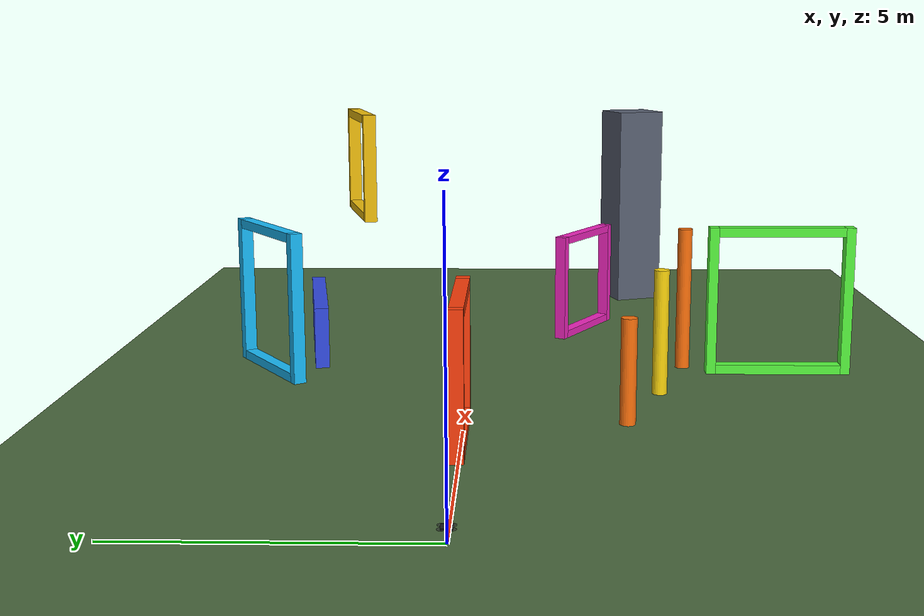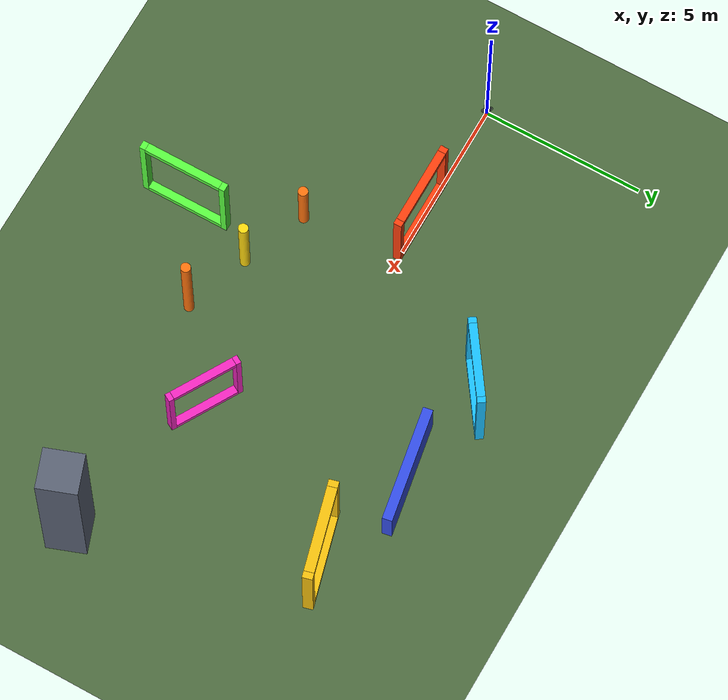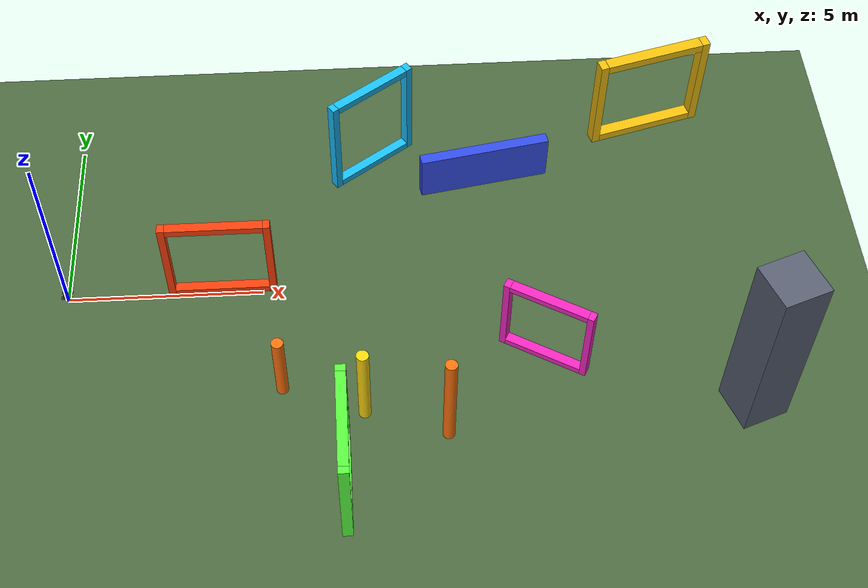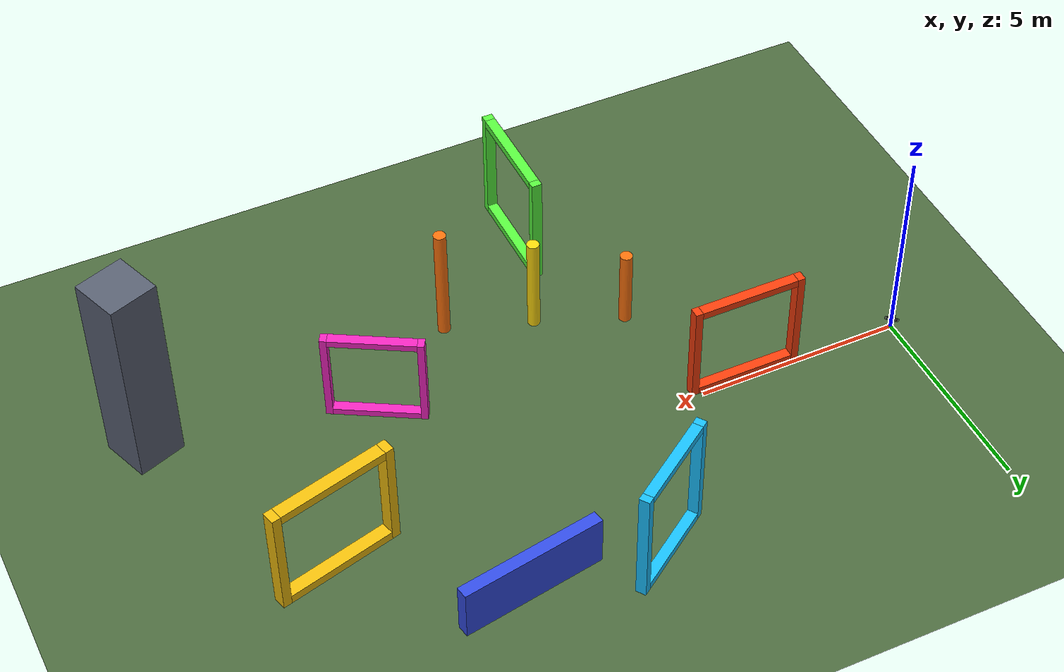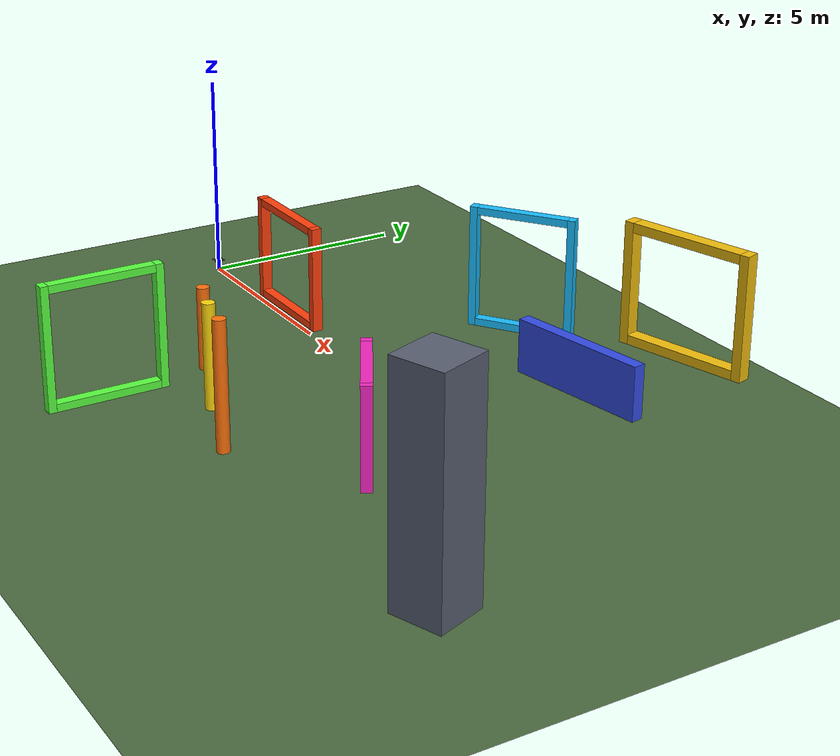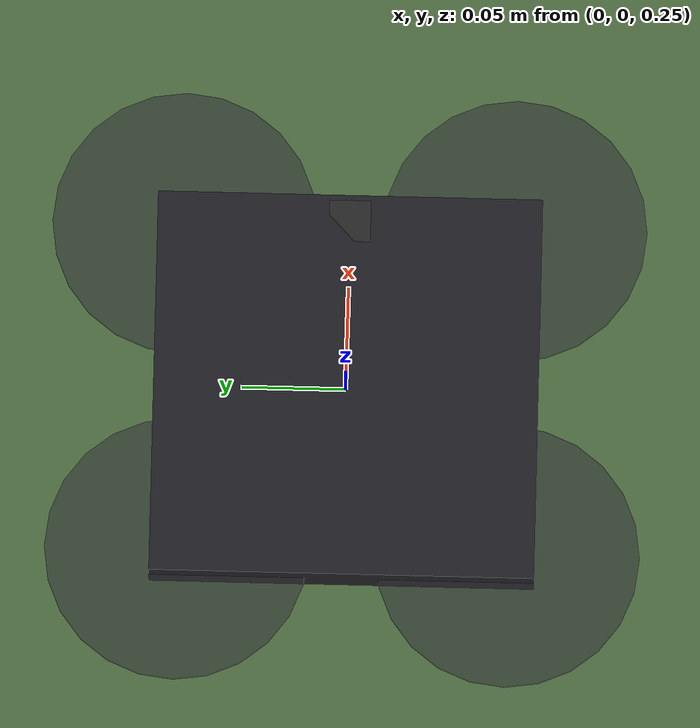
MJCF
<mujoco model="example-5inch-fpv">
  <compiler angle="degree" inertiafromgeom="false" />
  <option timestep="0.001" density="1.204" viscosity="0.000018" integrator="RK4" />
  <visual>
    <global azimuth="135" elevation="-20" />
    <rgba haze="0.72 0.84 0.96 1" />
    <headlight ambient="0.55 0.55 0.55" diffuse="0.8 0.8 0.8" specular="0.25 0.25 0.25" />
  </visual>
  <asset>
    <texture name="fpv_sky" type="skybox" builtin="gradient" rgb1="0.62 0.78 0.95" rgb2="0.78 0.94 1" width="512" height="3072" />
  </asset>
  <worldbody>
    <light name="key-light" pos="0 -5 12" dir="0 0.25 -1" diffuse="0.95 0.95 0.92" ambient="0.25 0.25 0.25" directional="true" castshadow="true" />
    <light name="fill-light" pos="8 4 7" dir="-0.7 -0.3 -1" diffuse="0.55 0.65 0.8" ambient="0.12 0.12 0.16" directional="true" castshadow="true" />
    <geom name="ground" type="plane" size="30 30 0.1" rgba="0.3 0.42 0.25 1" friction="0.8 0.02 0.001" />
    <body name="course_start-gate" pos="4 0 1.5" euler="0 0 0">
      <geom contype="1" conaffinity="1" friction="0.15 0.002 0.0001" condim="3" rgba="1 0.25 0.05 1" name="start-gate_left" type="box" pos="-1.29 0 0" size="0.09 0.125 1.28" />
      <geom contype="1" conaffinity="1" friction="0.15 0.002 0.0001" condim="3" rgba="1 0.25 0.05 1" name="start-gate_right" type="box" pos="1.29 0 0" size="0.09 0.125 1.28" />
      <geom contype="1" conaffinity="1" friction="0.15 0.002 0.0001" condim="3" rgba="1 0.25 0.05 1" name="start-gate_top" type="box" pos="0 0 1.19" size="1.2 0.125 0.09" />
      <geom contype="1" conaffinity="1" friction="0.15 0.002 0.0001" condim="3" rgba="1 0.25 0.05 1" name="start-gate_bottom" type="box" pos="0 0 -1.19" size="1.2 0.125 0.09" />
    </body>
    <body name="course_gate-left" pos="8 4 1.8" euler="0 0 35">
      <geom contype="1" conaffinity="1" friction="0.15 0.002 0.0001" condim="3" rgba="0.1 0.75 1 1" name="gate-left_left" type="box" pos="-1.19 0 0" size="0.09 0.125 1.48" />
      <geom contype="1" conaffinity="1" friction="0.15 0.002 0.0001" condim="3" rgba="0.1 0.75 1 1" name="gate-left_right" type="box" pos="1.19 0 0" size="0.09 0.125 1.48" />
      <geom contype="1" conaffinity="1" friction="0.15 0.002 0.0001" condim="3" rgba="0.1 0.75 1 1" name="gate-left_top" type="box" pos="0 0 1.39" size="1.1 0.125 0.09" />
      <geom contype="1" conaffinity="1" friction="0.15 0.002 0.0001" condim="3" rgba="0.1 0.75 1 1" name="gate-left_bottom" type="box" pos="0 0 -1.39" size="1.1 0.125 0.09" />
    </body>
    <body name="course_gate-right" pos="12 -2.5 1.4" euler="0 0 -30">
      <geom contype="1" conaffinity="1" friction="0.15 0.002 0.0001" condim="3" rgba="0.95 0.15 0.75 1" name="gate-right_left" type="box" pos="-1.08 0 0" size="0.08 0.125 1.16" />
      <geom contype="1" conaffinity="1" friction="0.15 0.002 0.0001" condim="3" rgba="0.95 0.15 0.75 1" name="gate-right_right" type="box" pos="1.08 0 0" size="0.08 0.125 1.16" />
      <geom contype="1" conaffinity="1" friction="0.15 0.002 0.0001" condim="3" rgba="0.95 0.15 0.75 1" name="gate-right_top" type="box" pos="0 0 1.08" size="1 0.125 0.08" />
      <geom contype="1" conaffinity="1" friction="0.15 0.002 0.0001" condim="3" rgba="0.95 0.15 0.75 1" name="gate-right_bottom" type="box" pos="0 0 -1.08" size="1 0.125 0.08" />
    </body>
    <body name="course_high-gate" pos="15 3 3.8" euler="0 0 15">
      <geom contype="1" conaffinity="1" friction="0.15 0.002 0.0001" condim="3" rgba="0.95 0.75 0.05 1" name="high-gate_left" type="box" pos="-1.35 0 0" size="0.1 0.15 1.3" />
      <geom contype="1" conaffinity="1" friction="0.15 0.002 0.0001" condim="3" rgba="0.95 0.75 0.05 1" name="high-gate_right" type="box" pos="1.35 0 0" size="0.1 0.15 1.3" />
      <geom contype="1" conaffinity="1" friction="0.15 0.002 0.0001" condim="3" rgba="0.95 0.75 0.05 1" name="high-gate_top" type="box" pos="0 0 1.2" size="1.25 0.15 0.1" />
      <geom contype="1" conaffinity="1" friction="0.15 0.002 0.0001" condim="3" rgba="0.95 0.75 0.05 1" name="high-gate_bottom" type="box" pos="0 0 -1.2" size="1.25 0.15 0.1" />
    </body>
    <body name="course_return-gate" pos="7 -6 2" euler="0 0 90">
      <geom contype="1" conaffinity="1" friction="0.15 0.002 0.0001" condim="3" rgba="0.35 1 0.25 1" name="return-gate_left" type="box" pos="-1.29 0 0" size="0.09 0.125 1.43" />
      <geom contype="1" conaffinity="1" friction="0.15 0.002 0.0001" condim="3" rgba="0.35 1 0.25 1" name="return-gate_right" type="box" pos="1.29 0 0" size="0.09 0.125 1.43" />
      <geom contype="1" conaffinity="1" friction="0.15 0.002 0.0001" condim="3" rgba="0.35 1 0.25 1" name="return-gate_top" type="box" pos="0 0 1.34" size="1.2 0.125 0.09" />
      <geom contype="1" conaffinity="1" friction="0.15 0.002 0.0001" condim="3" rgba="0.35 1 0.25 1" name="return-gate_bottom" type="box" pos="0 0 -1.34" size="1.2 0.125 0.09" />
    </body>
    <body name="course_slalom-1" pos="5.5 -3 1" euler="0 0 0">
      <geom contype="1" conaffinity="1" friction="0.15 0.002 0.0001" condim="3" rgba="1 0.45 0.05 1" name="slalom-1_geom" type="cylinder" size="0.15 1" />
    </body>
    <body name="course_slalom-2" pos="7.5 -3.8 1.25" euler="0 0 0">
      <geom contype="1" conaffinity="1" friction="0.15 0.002 0.0001" condim="3" rgba="1 0.85 0.05 1" name="slalom-2_geom" type="cylinder" size="0.15 1.25" />
    </body>
    <body name="course_slalom-3" pos="9.5 -4.5 1.5" euler="0 0 0">
      <geom contype="1" conaffinity="1" friction="0.15 0.002 0.0001" condim="3" rgba="1 0.45 0.05 1" name="slalom-3_geom" type="cylinder" size="0.15 1.5" />
    </body>
    <body name="course_low-bar" pos="11 3.5 0.65" euler="0 0 10">
      <geom contype="1" conaffinity="1" friction="0.15 0.002 0.0001" condim="3" rgba="0.2 0.3 0.9 1" name="low-bar_geom" type="box" size="1.75 0.15 0.65" />
    </body>
    <body name="course_tower" pos="17 -4 2.5" euler="0 0 20">
      <geom contype="1" conaffinity="1" friction="0.15 0.002 0.0001" condim="3" rgba="0.35 0.38 0.45 1" name="tower_geom" type="box" size="0.6 0.6 2.5" />
    </body>
    <body name="drone_base" pos="0 0 0.25">
      <freejoint name="drone_freejoint" />
      <inertial pos="0.00177449168207 0 0.010674676525" mass="0.541" diaginertia="0.00141342665974 0.00148852314772 0.00272149232132" />
      <geom name="frame" type="box" size="0.0925 0.0925 0.015" mass="0" rgba="0.12 0.12 0.14 1" friction="0.15 0.002 0.0001" />
      <body name="prop1" pos="0.0795495128835 -0.0795495128835 0">
        <geom name="prop1_geom" type="cylinder" size="0.0635 0.0015" mass="0" contype="0" conaffinity="0" rgba="0.18 0.18 0.20 0.55" />
        <site name="prop1_axis" type="sphere" size="0.006" rgba="0.9 0.2 0.15 1" />
      </body>
      <body name="prop2" pos="0.0795495128835 0.0795495128835 0">
        <geom name="prop2_geom" type="cylinder" size="0.0635 0.0015" mass="0" contype="0" conaffinity="0" rgba="0.18 0.18 0.20 0.55" />
        <site name="prop2_axis" type="sphere" size="0.006" rgba="0.15 0.55 1 1" />
      </body>
      <body name="prop3" pos="-0.0795495128835 0.0795495128835 0">
        <geom name="prop3_geom" type="cylinder" size="0.0635 0.0015" mass="0" contype="0" conaffinity="0" rgba="0.18 0.18 0.20 0.55" />
        <site name="prop3_axis" type="sphere" size="0.006" rgba="0.9 0.2 0.15 1" />
      </body>
      <body name="prop4" pos="-0.0795495128835 -0.0795495128835 0">
        <geom name="prop4_geom" type="cylinder" size="0.0635 0.0015" mass="0" contype="0" conaffinity="0" rgba="0.18 0.18 0.20 0.55" />
        <site name="prop4_axis" type="sphere" size="0.006" rgba="0.15 0.55 1 1" />
      </body>
      <geom name="fpv_camera" type="box" pos="0.08 0 0.005" size="0.01 0.01 0.01" mass="0" contype="0" conaffinity="0" rgba="0.15 0.15 0.15 1" />
      <camera name="fpv" pos="0.08 0 0.005" xyaxes="0 -1 0 0 0 1" fovy="120" />
    </body>
  </worldbody>
</mujoco>
